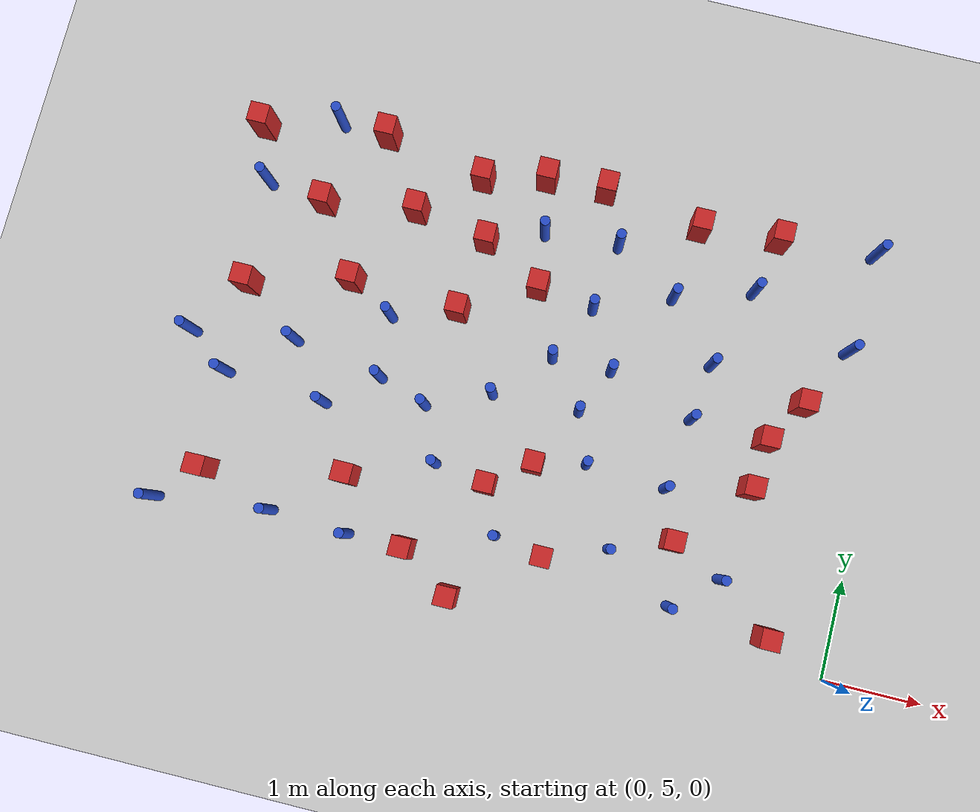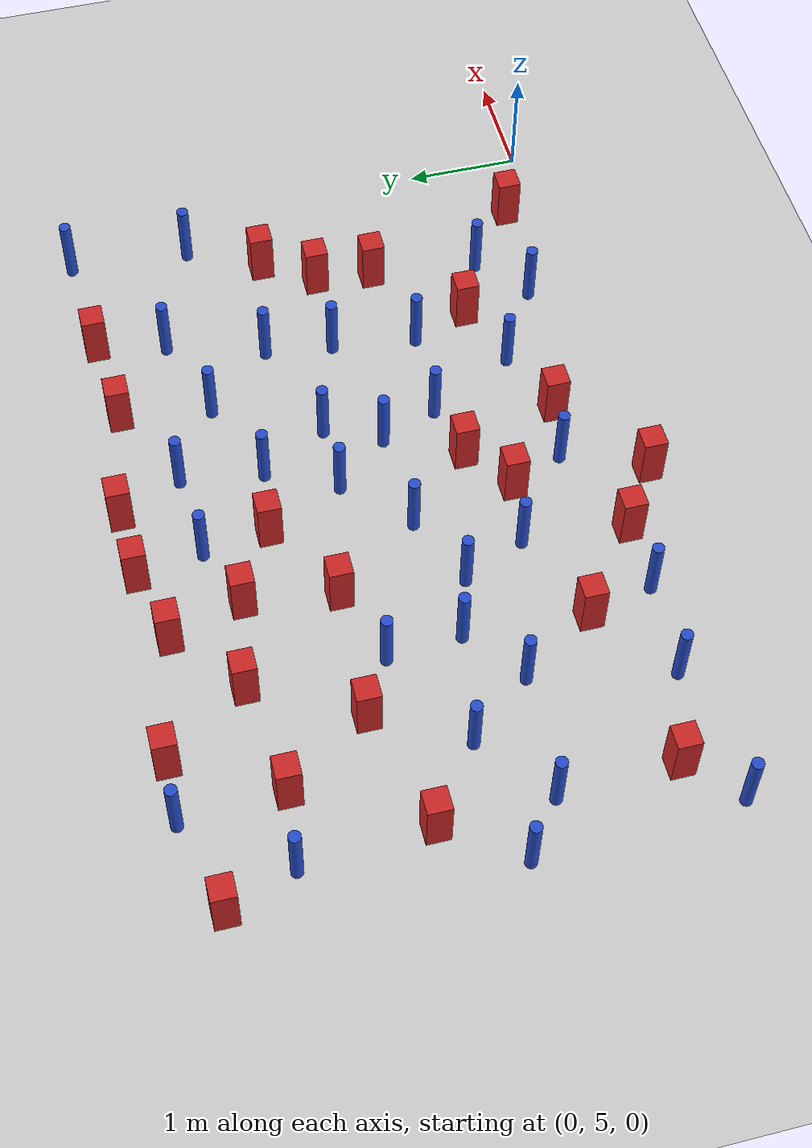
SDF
<sdf version="1.6">
 <world name="default">
  <model name="ground_plane">
   <static>1</static>
   <link name="link">
    <collision name="collision">
     <geometry><plane><normal>0 0 1</normal><size>100 100</size></plane></geometry>
     <surface><friction><ode><mu>100</mu><mu2>50</mu2></ode></friction></surface>
    </collision>
    <visual name="visual">
     <cast_shadows>0</cast_shadows>
     <geometry><plane><normal>0 0 1</normal><size>100 100</size></plane></geometry>
     <material>
      <ambient>1.0 1.0 1.0 1.0</ambient>
      <diffuse>0.8 0.8 0.8 1.0</diffuse>
      <specular>0.01 0.01 0.01 1.000000</specular>
     </material>
    </visual>
   </link>
  </model>
  <model name="square_post_obstacle0">
   <static>true</static>
   <pose>-6.83887996869 9.17429792986 -7.80171244635e-07 7.17449752808e-06 -5.6639232126e-07 2.2715510512e-05</pose>
   <link name="link">
    <pose>0 0 0.25 0 -0 0</pose>
    <inertial>
     <mass>100</mass>
     <inertia>
      <ixx>0.166667</ixx>
      <ixy>0</ixy>
      <ixz>0</ixz>
      <iyy>0.166667</iyy>
      <iyz>0</iyz>
      <izz>0.166667</izz>
     </inertia>
    </inertial>
    <collision name="collision"><geometry><box><size>.2 .2 .5</size></box></geometry></collision>
    <visual name="visual">
     <geometry><box><size>.2 .2 .5</size></box></geometry>
     <material>
      <script><name>Gazebo/Red</name><uri>file://media/materials/scripts/gazebo.material</uri></script>
     </material>
    </visual>
   </link>
  </model>
  <model name="pole_obstacle20">
   <static>true</static>
   <pose>-5.93299753784 7.05124423106 -2.66029137441e-07 -5.69430205655e-07 6.84129966534e-07 -8.68349370984e-08</pose>
   <link name="link">
    <pose>0 0 0.3 0 -0 0</pose>
    <inertial>
     <mass>1</mass>
     <inertia><ixx>0.145833</ixx><ixy>0</ixy><ixz>0</ixz><iyy>0.145833</iyy><iyz>0</iyz><izz>0.125</izz></inertia>
    </inertial>
    <collision name="collision">
     <geometry><cylinder><radius>0.05</radius><length>.6</length></cylinder></geometry>
    </collision>
    <visual name="visual">
     <geometry><cylinder><radius>0.05</radius><length>.6</length></cylinder></geometry>
     <material>
      <script><name>Gazebo/Blue</name><uri>file://media/materials/scripts/gazebo.material</uri></script>
     </material>
    </visual>
   </link>
  </model>
  <model name="pole_obstacle27">
   <static>true</static>
   <pose>-6.97796490425 6.90476265055 -2.66029137441e-07 -5.69430205655e-07 6.84129966534e-07 -8.68349370984e-08</pose>
   <link name="link">
    <pose>0 0 0.3 0 -0 0</pose>
    <inertial>
     <mass>1</mass>
     <inertia><ixx>0.145833</ixx><ixy>0</ixy><ixz>0</ixz><iyy>0.145833</iyy><iyz>0</iyz><izz>0.125</izz></inertia>
    </inertial>
    <collision name="collision">
     <geometry><cylinder><radius>0.05</radius><length>.6</length></cylinder></geometry>
    </collision>
    <visual name="visual">
     <geometry><cylinder><radius>0.05</radius><length>.6</length></cylinder></geometry>
     <material>
      <script><name>Gazebo/Blue</name><uri>file://media/materials/scripts/gazebo.material</uri></script>
     </material>
    </visual>
   </link>
  </model>
  <model name="pole_obstacle29">
   <static>true</static>
   <pose>-1.77329389116 7.79577977968 -2.66029137441e-07 -5.69430205635e-07 6.84129966557e-07 -8.68349370822e-08</pose>
   <link name="link">
    <pose>0 0 0.3 0 -0 0</pose>
    <inertial>
     <mass>1</mass>
     <inertia><ixx>0.145833</ixx><ixy>0</ixy><ixz>0</ixz><iyy>0.145833</iyy><iyz>0</iyz><izz>0.125</izz></inertia>
    </inertial>
    <collision name="collision">
     <geometry><cylinder><radius>0.05</radius><length>.6</length></cylinder></geometry>
    </collision>
    <visual name="visual">
     <geometry><cylinder><radius>0.05</radius><length>.6</length></cylinder></geometry>
     <material>
      <script><name>Gazebo/Blue</name><uri>file://media/materials/scripts/gazebo.material</uri></script>
     </material>
    </visual>
   </link>
  </model>
  <model name="square_post_obstacle25">
   <static>true</static>
   <pose>-1.12262337533 6.67532408593 -7.80171244635e-07 7.17449752808e-06 -5.6639232126e-07 2.2715510512e-05</pose>
   <link name="link">
    <pose>0 0 0.25 0 -0 0</pose>
    <inertial>
     <mass>100</mass>
     <inertia>
      <ixx>0.166667</ixx>
      <ixy>0</ixy>
      <ixz>0</ixz>
      <iyy>0.166667</iyy>
      <iyz>0</iyz>
      <izz>0.166667</izz>
     </inertia>
    </inertial>
    <collision name="collision"><geometry><box><size>.2 .2 .5</size></box></geometry></collision>
    <visual name="visual">
     <geometry><box><size>.2 .2 .5</size></box></geometry>
     <material>
      <script><name>Gazebo/Red</name><uri>file://media/materials/scripts/gazebo.material</uri></script>
     </material>
    </visual>
   </link>
  </model>
  <model name="square_post_obstacle26">
   <static>true</static>
   <pose>-2.19983789759 9.16449248142 -7.80171244635e-07 7.17449752808e-06 -5.6639232126e-07 2.2715510512e-05</pose>
   <link name="link">
    <pose>0 0 0.25 0 -0 0</pose>
    <inertial>
     <mass>100</mass>
     <inertia>
      <ixx>0.166667</ixx>
      <ixy>0</ixy>
      <ixz>0</ixz>
      <iyy>0.166667</iyy>
      <iyz>0</iyz>
      <izz>0.166667</izz>
     </inertia>
    </inertial>
    <collision name="collision"><geometry><box><size>.2 .2 .5</size></box></geometry></collision>
    <visual name="visual">
     <geometry><box><size>.2 .2 .5</size></box></geometry>
     <material>
      <script><name>Gazebo/Red</name><uri>file://media/materials/scripts/gazebo.material</uri></script>
     </material>
    </visual>
   </link>
  </model>
  <model name="pole_obstacle32">
   <static>true</static>
   <pose>-3.85718485133 6.98744299189 -2.66029137497e-07 -5.69430205671e-07 6.84129966507e-07 -8.68349371095e-08</pose>
   <link name="link">
    <pose>0 0 0.3 0 -0 0</pose>
    <inertial>
     <mass>1</mass>
     <inertia><ixx>0.145833</ixx><ixy>0</ixy><ixz>0</ixz><iyy>0.145833</iyy><iyz>0</iyz><izz>0.125</izz></inertia>
    </inertial>
    <collision name="collision">
     <geometry><cylinder><radius>0.05</radius><length>.6</length></cylinder></geometry>
    </collision>
    <visual name="visual">
     <geometry><cylinder><radius>0.05</radius><length>.6</length></cylinder></geometry>
     <material>
      <script><name>Gazebo/Blue</name><uri>file://media/materials/scripts/gazebo.material</uri></script>
     </material>
    </visual>
   </link>
  </model>
  <model name="pole_obstacle35">
   <static>true</static>
   <pose>-3.73562210031 8.73606289772 -2.66029137497e-07 -5.69430205676e-07 6.84129966501e-07 -8.6834937112e-08</pose>
   <link name="link">
    <pose>0 0 0.3 0 -0 0</pose>
    <inertial>
     <mass>1</mass>
     <inertia><ixx>0.145833</ixx><ixy>0</ixy><ixz>0</ixz><iyy>0.145833</iyy><iyz>0</iyz><izz>0.125</izz></inertia>
    </inertial>
    <collision name="collision">
     <geometry><cylinder><radius>0.05</radius><length>.6</length></cylinder></geometry>
    </collision>
    <visual name="visual">
     <geometry><cylinder><radius>0.05</radius><length>.6</length></cylinder></geometry>
     <material>
      <script><name>Gazebo/Blue</name><uri>file://media/materials/scripts/gazebo.material</uri></script>
     </material>
    </visual>
   </link>
  </model>
  <model name="pole_obstacle40">
   <static>true</static>
   <pose>-1.22563379381 5.72191360448 -2.66029137441e-07 -5.69430205635e-07 6.84129966557e-07 -8.68349370822e-08</pose>
   <link name="link">
    <pose>0 0 0.3 0 -0 0</pose>
    <inertial>
     <mass>1</mass>
     <inertia><ixx>0.145833</ixx><ixy>0</ixy><ixz>0</ixz><iyy>0.145833</iyy><iyz>0</iyz><izz>0.125</izz></inertia>
    </inertial>
    <collision name="collision">
     <geometry><cylinder><radius>0.05</radius><length>.6</length></cylinder></geometry>
    </collision>
    <visual name="visual">
     <geometry><cylinder><radius>0.05</radius><length>.6</length></cylinder></geometry>
     <material>
      <script><name>Gazebo/Blue</name><uri>file://media/materials/scripts/gazebo.material</uri></script>
     </material>
    </visual>
   </link>
  </model>
  <model name="square_post_obstacle32">
   <static>true</static>
   <pose>-5.53222149862 7.79740449973 -7.80171244635e-07 7.17449752808e-06 -5.6639232126e-07 2.2715510512e-05</pose>
   <link name="link">
    <pose>0 0 0.25 0 -0 0</pose>
    <inertial>
     <mass>100</mass>
     <inertia>
      <ixx>0.166667</ixx>
      <ixy>0</ixy>
      <ixz>0</ixz>
      <iyy>0.166667</iyy>
      <iyz>0</iyz>
      <izz>0.166667</izz>
     </inertia>
    </inertial>
    <collision name="collision"><geometry><box><size>.2 .2 .5</size></box></geometry></collision>
    <visual name="visual">
     <geometry><box><size>.2 .2 .5</size></box></geometry>
     <material>
      <script><name>Gazebo/Red</name><uri>file://media/materials/scripts/gazebo.material</uri></script>
     </material>
    </visual>
   </link>
  </model>
  <model name="pole_obstacle44">
   <static>true</static>
   <pose>-1.85232527672 7.20815663883 -2.66029137441e-07 -5.69430205635e-07 6.84129966557e-07 -8.68349370822e-08</pose>
   <link name="link">
    <pose>0 0 0.3 0 -0 0</pose>
    <inertial>
     <mass>1</mass>
     <inertia><ixx>0.145833</ixx><ixy>0</ixy><ixz>0</ixz><iyy>0.145833</iyy><iyz>0</iyz><izz>0.125</izz></inertia>
    </inertial>
    <collision name="collision">
     <geometry><cylinder><radius>0.05</radius><length>.6</length></cylinder></geometry>
    </collision>
    <visual name="visual">
     <geometry><cylinder><radius>0.05</radius><length>.6</length></cylinder></geometry>
     <material>
      <script><name>Gazebo/Blue</name><uri>file://media/materials/scripts/gazebo.material</uri></script>
     </material>
    </visual>
   </link>
  </model>
  <model name="square_post_obstacle38">
   <static>true</static>
   <pose>-0.790095084288 7.62707374398 -7.80171244635e-07 7.17449752808e-06 -5.6639232126e-07 2.2715510512e-05</pose>
   <link name="link">
    <pose>0 0 0.25 0 -0 0</pose>
    <inertial>
     <mass>100</mass>
     <inertia>
      <ixx>0.166667</ixx>
      <ixy>0</ixy>
      <ixz>0</ixz>
      <iyy>0.166667</iyy>
      <iyz>0</iyz>
      <izz>0.166667</izz>
     </inertia>
    </inertial>
    <collision name="collision"><geometry><box><size>.2 .2 .5</size></box></geometry></collision>
    <visual name="visual">
     <geometry><box><size>.2 .2 .5</size></box></geometry>
     <material>
      <script><name>Gazebo/Red</name><uri>file://media/materials/scripts/gazebo.material</uri></script>
     </material>
    </visual>
   </link>
  </model>
  <model name="pole_obstacle52">
   <static>true</static>
   <pose>-4.49309569144 6.71539703016 -2.66029137441e-07 -5.69430205655e-07 6.84129966534e-07 -8.68349370984e-08</pose>
   <link name="link">
    <pose>0 0 0.3 0 -0 0</pose>
    <inertial>
     <mass>1</mass>
     <inertia><ixx>0.145833</ixx><ixy>0</ixy><ixz>0</ixz><iyy>0.145833</iyy><iyz>0</iyz><izz>0.125</izz></inertia>
    </inertial>
    <collision name="collision">
     <geometry><cylinder><radius>0.05</radius><length>.6</length></cylinder></geometry>
    </collision>
    <visual name="visual">
     <geometry><cylinder><radius>0.05</radius><length>.6</length></cylinder></geometry>
     <material>
      <script><name>Gazebo/Blue</name><uri>file://media/materials/scripts/gazebo.material</uri></script>
     </material>
    </visual>
   </link>
  </model>
  <model name="pole_obstacle55">
   <static>true</static>
   <pose>-4.92157734486 5.28112593331 -2.66029137441e-07 -5.69430205655e-07 6.84129966534e-07 -8.68349370984e-08</pose>
   <link name="link">
    <pose>0 0 0.3 0 -0 0</pose>
    <inertial>
     <mass>1</mass>
     <inertia><ixx>0.145833</ixx><ixy>0</ixy><ixz>0</ixz><iyy>0.145833</iyy><iyz>0</iyz><izz>0.125</izz></inertia>
    </inertial>
    <collision name="collision">
     <geometry><cylinder><radius>0.05</radius><length>.6</length></cylinder></geometry>
    </collision>
    <visual name="visual">
     <geometry><cylinder><radius>0.05</radius><length>.6</length></cylinder></geometry>
     <material>
      <script><name>Gazebo/Blue</name><uri>file://media/materials/scripts/gazebo.material</uri></script>
     </material>
    </visual>
   </link>
  </model>
  <model name="pole_obstacle59">
   <static>true</static>
   <pose>-2.30244423434 8.38269228352 -2.66029137497e-07 -5.69430205676e-07 6.84129966501e-07 -8.6834937112e-08</pose>
   <link name="link">
    <pose>0 0 0.3 0 -0 0</pose>
    <inertial>
     <mass>1</mass>
     <inertia><ixx>0.145833</ixx><ixy>0</ixy><ixz>0</ixz><iyy>0.145833</iyy><iyz>0</iyz><izz>0.125</izz></inertia>
    </inertial>
    <collision name="collision">
     <geometry><cylinder><radius>0.05</radius><length>.6</length></cylinder></geometry>
    </collision>
    <visual name="visual">
     <geometry><cylinder><radius>0.05</radius><length>.6</length></cylinder></geometry>
     <material>
      <script><name>Gazebo/Blue</name><uri>file://media/materials/scripts/gazebo.material</uri></script>
     </material>
    </visual>
   </link>
  </model>
  <model name="pole_obstacle64">
   <static>true</static>
   <pose>-6.06229035048 9.38630342026 -2.66029137441e-07 -5.69430205631e-07 6.84129966561e-07 -8.68349370782e-08</pose>
   <link name="link">
    <pose>0 0 0.3 0 -0 0</pose>
    <inertial>
     <mass>1</mass>
     <inertia><ixx>0.145833</ixx><ixy>0</ixy><ixz>0</ixz><iyy>0.145833</iyy><iyz>0</iyz><izz>0.125</izz></inertia>
    </inertial>
    <collision name="collision">
     <geometry><cylinder><radius>0.05</radius><length>.6</length></cylinder></geometry>
    </collision>
    <visual name="visual">
     <geometry><cylinder><radius>0.05</radius><length>.6</length></cylinder></geometry>
     <material>
      <script><name>Gazebo/Blue</name><uri>file://media/materials/scripts/gazebo.material</uri></script>
     </material>
    </visual>
   </link>
  </model>
  <model name="pole_obstacle65">
   <static>true</static>
   <pose>-3.48631925765 5.61033831803 -2.66029137497e-07 -5.69430205671e-07 6.84129966507e-07 -8.68349371095e-08</pose>
   <link name="link">
    <pose>0 0 0.3 0 -0 0</pose>
    <inertial>
     <mass>1</mass>
     <inertia><ixx>0.145833</ixx><ixy>0</ixy><ixz>0</ixz><iyy>0.145833</iyy><iyz>0</iyz><izz>0.125</izz></inertia>
    </inertial>
    <collision name="collision">
     <geometry><cylinder><radius>0.05</radius><length>.6</length></cylinder></geometry>
    </collision>
    <visual name="visual">
     <geometry><cylinder><radius>0.05</radius><length>.6</length></cylinder></geometry>
     <material>
      <script><name>Gazebo/Blue</name><uri>file://media/materials/scripts/gazebo.material</uri></script>
     </material>
    </visual>
   </link>
  </model>
  <model name="square_post_obstacle50">
   <static>true</static>
   <pose>-0.670259163197 5.27795611319 -7.80171244635e-07 7.17449752808e-06 -5.6639232126e-07 2.2715510512e-05</pose>
   <link name="link">
    <pose>0 0 0.25 0 -0 0</pose>
    <inertial>
     <mass>100</mass>
     <inertia>
      <ixx>0.166667</ixx>
      <ixy>0</ixy>
      <ixz>0</ixz>
      <iyy>0.166667</iyy>
      <iyz>0</iyz>
      <izz>0.166667</izz>
     </inertia>
    </inertial>
    <collision name="collision"><geometry><box><size>.2 .2 .5</size></box></geometry></collision>
    <visual name="visual">
     <geometry><box><size>.2 .2 .5</size></box></geometry>
     <material>
      <script><name>Gazebo/Red</name><uri>file://media/materials/scripts/gazebo.material</uri></script>
     </material>
    </visual>
   </link>
  </model>
  <model name="pole_obstacle69">
   <static>true</static>
   <pose>-1.51433584829 8.63703716128 -2.66029137441e-07 -5.69430205648e-07 6.84129966543e-07 -8.68349370925e-08</pose>
   <link name="link">
    <pose>0 0 0.3 0 -0 0</pose>
    <inertial>
     <mass>1</mass>
     <inertia><ixx>0.145833</ixx><ixy>0</ixy><ixz>0</ixz><iyy>0.145833</iyy><iyz>0</iyz><izz>0.125</izz></inertia>
    </inertial>
    <collision name="collision">
     <geometry><cylinder><radius>0.05</radius><length>.6</length></cylinder></geometry>
    </collision>
    <visual name="visual">
     <geometry><cylinder><radius>0.05</radius><length>.6</length></cylinder></geometry>
     <material>
      <script><name>Gazebo/Blue</name><uri>file://media/materials/scripts/gazebo.material</uri></script>
     </material>
    </visual>
   </link>
  </model>
  <model name="square_post_obstacle62">
   <static>true</static>
   <pose>-4.48772408723 9.15070110294 -7.80171244635e-07 7.17449752808e-06 -5.6639232126e-07 2.2715510512e-05</pose>
   <link name="link">
    <pose>0 0 0.25 0 -0 0</pose>
    <inertial>
     <mass>100</mass>
     <inertia>
      <ixx>0.166667</ixx>
      <ixy>0</ixy>
      <ixz>0</ixz>
      <iyy>0.166667</iyy>
      <iyz>0</iyz>
      <izz>0.166667</izz>
     </inertia>
    </inertial>
    <collision name="collision"><geometry><box><size>.2 .2 .5</size></box></geometry></collision>
    <visual name="visual">
     <geometry><box><size>.2 .2 .5</size></box></geometry>
     <material>
      <script><name>Gazebo/Red</name><uri>file://media/materials/scripts/gazebo.material</uri></script>
     </material>
    </visual>
   </link>
  </model>
  <model name="pole_obstacle81">
   <static>true</static>
   <pose>-2.74382415478 7.49635694177 -2.66029137441e-07 -5.69430205635e-07 6.84129966557e-07 -8.68349370832e-08</pose>
   <link name="link">
    <pose>0 0 0.3 0 -0 0</pose>
    <inertial>
     <mass>1</mass>
     <inertia><ixx>0.145833</ixx><ixy>0</ixy><ixz>0</ixz><iyy>0.145833</iyy><iyz>0</iyz><izz>0.125</izz></inertia>
    </inertial>
    <collision name="collision">
     <geometry><cylinder><radius>0.05</radius><length>.6</length></cylinder></geometry>
    </collision>
    <visual name="visual">
     <geometry><cylinder><radius>0.05</radius><length>.6</length></cylinder></geometry>
     <material>
      <script><name>Gazebo/Blue</name><uri>file://media/materials/scripts/gazebo.material</uri></script>
     </material>
    </visual>
   </link>
  </model>
  <model name="pole_obstacle82">
   <static>true</static>
   <pose>-0.45741310276 8.25445707647 -2.66029137441e-07 -5.69430205644e-07 6.84129966547e-07 -8.68349370903e-08</pose>
   <link name="link">
    <pose>0 0 0.3 0 -0 0</pose>
    <inertial>
     <mass>1</mass>
     <inertia><ixx>0.145833</ixx><ixy>0</ixy><ixz>0</ixz><iyy>0.145833</iyy><iyz>0</iyz><izz>0.125</izz></inertia>
    </inertial>
    <collision name="collision">
     <geometry><cylinder><radius>0.05</radius><length>.6</length></cylinder></geometry>
    </collision>
    <visual name="visual">
     <geometry><cylinder><radius>0.05</radius><length>.6</length></cylinder></geometry>
     <material>
      <script><name>Gazebo/Blue</name><uri>file://media/materials/scripts/gazebo.material</uri></script>
     </material>
    </visual>
   </link>
  </model>
  <model name="square_post_obstacle72">
   <static>true</static>
   <pose>-4.34006714878 5.2861003149 -7.80171244635e-07 7.17449752808e-06 -5.6639232126e-07 2.2715510512e-05</pose>
   <link name="link">
    <pose>0 0 0.25 0 -0 0</pose>
    <inertial>
     <mass>100</mass>
     <inertia>
      <ixx>0.166667</ixx>
      <ixy>0</ixy>
      <ixz>0</ixz>
      <iyy>0.166667</iyy>
      <iyz>0</iyz>
      <izz>0.166667</izz>
     </inertia>
    </inertial>
    <collision name="collision"><geometry><box><size>.2 .2 .5</size></box></geometry></collision>
    <visual name="visual">
     <geometry><box><size>.2 .2 .5</size></box></geometry>
     <material>
      <script><name>Gazebo/Red</name><uri>file://media/materials/scripts/gazebo.material</uri></script>
     </material>
    </visual>
   </link>
  </model>
  <model name="pole_obstacle86">
   <static>true</static>
   <pose>-3.07265329151 8.08156290127 -2.66029137441e-07 -5.69430205637e-07 6.84129966555e-07 -8.68349370847e-08</pose>
   <link name="link">
    <pose>0 0 0.3 0 -0 0</pose>
    <inertial>
     <mass>1</mass>
     <inertia><ixx>0.145833</ixx><ixy>0</ixy><ixz>0</ixz><iyy>0.145833</iyy><iyz>0</iyz><izz>0.125</izz></inertia>
    </inertial>
    <collision name="collision">
     <geometry><cylinder><radius>0.05</radius><length>.6</length></cylinder></geometry>
    </collision>
    <visual name="visual">
     <geometry><cylinder><radius>0.05</radius><length>.6</length></cylinder></geometry>
     <material>
      <script><name>Gazebo/Blue</name><uri>file://media/materials/scripts/gazebo.material</uri></script>
     </material>
    </visual>
   </link>
  </model>
  <model name="pole_obstacle90">
   <static>true</static>
   <pose>-4.24516241833 6.16883136555 -2.66029137441e-07 -5.69430205655e-07 6.84129966534e-07 -8.68349370984e-08</pose>
   <link name="link">
    <pose>0 0 0.3 0 -0 0</pose>
    <inertial>
     <mass>1</mass>
     <inertia><ixx>0.145833</ixx><ixy>0</ixy><ixz>0</ixz><iyy>0.145833</iyy><iyz>0</iyz><izz>0.125</izz></inertia>
    </inertial>
    <collision name="collision">
     <geometry><cylinder><radius>0.05</radius><length>.6</length></cylinder></geometry>
    </collision>
    <visual name="visual">
     <geometry><cylinder><radius>0.05</radius><length>.6</length></cylinder></geometry>
     <material>
      <script><name>Gazebo/Blue</name><uri>file://media/materials/scripts/gazebo.material</uri></script>
     </material>
    </visual>
   </link>
  </model>
  <model name="pole_obstacle95">
   <static>true</static>
   <pose>-6.53063946784 6.57460335781 -2.66029137441e-07 -5.69430205655e-07 6.84129966534e-07 -8.68349370984e-08</pose>
   <link name="link">
    <pose>0 0 0.3 0 -0 0</pose>
    <inertial>
     <mass>1</mass>
     <inertia><ixx>0.145833</ixx><ixy>0</ixy><ixz>0</ixz><iyy>0.145833</iyy><iyz>0</iyz><izz>0.125</izz></inertia>
    </inertial>
    <collision name="collision">
     <geometry><cylinder><radius>0.05</radius><length>.6</length></cylinder></geometry>
    </collision>
    <visual name="visual">
     <geometry><cylinder><radius>0.05</radius><length>.6</length></cylinder></geometry>
     <material>
      <script><name>Gazebo/Blue</name><uri>file://media/materials/scripts/gazebo.material</uri></script>
     </material>
    </visual>
   </link>
  </model>
  <model name="square_post_obstacle98">
   <static>true</static>
   <pose>-3.70152067987 6.0896619253 -7.80171244635e-07 7.17449752808e-06 -5.6639232126e-07 2.2715510512e-05</pose>
   <link name="link">
    <pose>0 0 0.25 0 -0 0</pose>
    <inertial>
     <mass>100</mass>
     <inertia>
      <ixx>0.166667</ixx>
      <ixy>0</ixy>
      <ixz>0</ixz>
      <iyy>0.166667</iyy>
      <iyz>0</iyz>
      <izz>0.166667</izz>
     </inertia>
    </inertial>
    <collision name="collision"><geometry><box><size>.2 .2 .5</size></box></geometry></collision>
    <visual name="visual">
     <geometry><box><size>.2 .2 .5</size></box></geometry>
     <material>
      <script><name>Gazebo/Red</name><uri>file://media/materials/scripts/gazebo.material</uri></script>
     </material>
    </visual>
   </link>
  </model>
  <model name="pole_obstacle104">
   <static>true</static>
   <pose>-5.05443665744 7.52034737585 -2.66029137441e-07 -5.69430205655e-07 6.84129966534e-07 -8.68349370984e-08</pose>
   <link name="link">
    <pose>0 0 0.3 0 -0 0</pose>
    <inertial>
     <mass>1</mass>
     <inertia><ixx>0.145833</ixx><ixy>0</ixy><ixz>0</ixz><iyy>0.145833</iyy><iyz>0</iyz><izz>0.125</izz></inertia>
    </inertial>
    <collision name="collision">
     <geometry><cylinder><radius>0.05</radius><length>.6</length></cylinder></geometry>
    </collision>
    <visual name="visual">
     <geometry><cylinder><radius>0.05</radius><length>.6</length></cylinder></geometry>
     <material>
      <script><name>Gazebo/Blue</name><uri>file://media/materials/scripts/gazebo.material</uri></script>
     </material>
    </visual>
   </link>
  </model>
  <model name="pole_obstacle109">
   <static>true</static>
   <pose>-2.96432004817 7.02032658678 -2.66029137441e-07 -5.69430205635e-07 6.84129966557e-07 -8.68349370832e-08</pose>
   <link name="link">
    <pose>0 0 0.3 0 -0 0</pose>
    <inertial>
     <mass>1</mass>
     <inertia><ixx>0.145833</ixx><ixy>0</ixy><ixz>0</ixz><iyy>0.145833</iyy><iyz>0</iyz><izz>0.125</izz></inertia>
    </inertial>
    <collision name="collision">
     <geometry><cylinder><radius>0.05</radius><length>.6</length></cylinder></geometry>
    </collision>
    <visual name="visual">
     <geometry><cylinder><radius>0.05</radius><length>.6</length></cylinder></geometry>
     <material>
      <script><name>Gazebo/Blue</name><uri>file://media/materials/scripts/gazebo.material</uri></script>
     </material>
    </visual>
   </link>
  </model>
  <model name="square_post_obstacle105">
   <static>true</static>
   <pose>-3.66665297099 8.16835207123 -7.80171244635e-07 7.17449752808e-06 -5.6639232126e-07 2.2715510512e-05</pose>
   <link name="link">
    <pose>0 0 0.25 0 -0 0</pose>
    <inertial>
     <mass>100</mass>
     <inertia>
      <ixx>0.166667</ixx>
      <ixy>0</ixy>
      <ixz>0</ixz>
      <iyy>0.166667</iyy>
      <iyz>0</iyz>
      <izz>0.166667</izz>
     </inertia>
    </inertial>
    <collision name="collision"><geometry><box><size>.2 .2 .5</size></box></geometry></collision>
    <visual name="visual">
     <geometry><box><size>.2 .2 .5</size></box></geometry>
     <material>
      <script><name>Gazebo/Red</name><uri>file://media/materials/scripts/gazebo.material</uri></script>
     </material>
    </visual>
   </link>
  </model>
  <model name="pole_obstacle116">
   <static>true</static>
   <pose>-1.66390226145 5.34236646098 -2.66029137441e-07 -5.69430205635e-07 6.84129966557e-07 -8.68349370822e-08</pose>
   <link name="link">
    <pose>0 0 0.3 0 -0 0</pose>
    <inertial>
     <mass>1</mass>
     <inertia><ixx>0.145833</ixx><ixy>0</ixy><ixz>0</ixz><iyy>0.145833</iyy><iyz>0</iyz><izz>0.125</izz></inertia>
    </inertial>
    <collision name="collision">
     <geometry><cylinder><radius>0.05</radius><length>.6</length></cylinder></geometry>
    </collision>
    <visual name="visual">
     <geometry><cylinder><radius>0.05</radius><length>.6</length></cylinder></geometry>
     <material>
      <script><name>Gazebo/Blue</name><uri>file://media/materials/scripts/gazebo.material</uri></script>
     </material>
    </visual>
   </link>
  </model>
  <model name="square_post_obstacle116">
   <static>true</static>
   <pose>-3.2223436823 9.32889181291 -7.80171244635e-07 7.17449752808e-06 -5.6639232126e-07 2.2715510512e-05</pose>
   <link name="link">
    <pose>0 0 0.25 0 -0 0</pose>
    <inertial>
     <mass>100</mass>
     <inertia>
      <ixx>0.166667</ixx>
      <ixy>0</ixy>
      <ixz>0</ixz>
      <iyy>0.166667</iyy>
      <iyz>0</iyz>
      <izz>0.166667</izz>
     </inertia>
    </inertial>
    <collision name="collision"><geometry><box><size>.2 .2 .5</size></box></geometry></collision>
    <visual name="visual">
     <geometry><box><size>.2 .2 .5</size></box></geometry>
     <material>
      <script><name>Gazebo/Red</name><uri>file://media/materials/scripts/gazebo.material</uri></script>
     </material>
    </visual>
   </link>
  </model>
  <model name="pole_obstacle120">
   <static>true</static>
   <pose>-5.48655007974 6.49881449678 -2.66029137441e-07 -5.69430205655e-07 6.84129966534e-07 -8.68349370984e-08</pose>
   <link name="link">
    <pose>0 0 0.3 0 -0 0</pose>
    <inertial>
     <mass>1</mass>
     <inertia><ixx>0.145833</ixx><ixy>0</ixy><ixz>0</ixz><iyy>0.145833</iyy><iyz>0</iyz><izz>0.125</izz></inertia>
    </inertial>
    <collision name="collision">
     <geometry><cylinder><radius>0.05</radius><length>.6</length></cylinder></geometry>
    </collision>
    <visual name="visual">
     <geometry><cylinder><radius>0.05</radius><length>.6</length></cylinder></geometry>
     <material>
      <script><name>Gazebo/Blue</name><uri>file://media/materials/scripts/gazebo.material</uri></script>
     </material>
    </visual>
   </link>
  </model>
  <model name="square_post_obstacle121">
   <static>true</static>
   <pose>-6.55785365578 7.52226805257 -7.80171244635e-07 7.17449752808e-06 -5.6639232126e-07 2.2715510512e-05</pose>
   <link name="link">
    <pose>0 0 0.25 0 -0 0</pose>
    <inertial>
     <mass>100</mass>
     <inertia>
      <ixx>0.166667</ixx>
      <ixy>0</ixy>
      <ixz>0</ixz>
      <iyy>0.166667</iyy>
      <iyz>0</iyz>
      <izz>0.166667</izz>
     </inertia>
    </inertial>
    <collision name="collision"><geometry><box><size>.2 .2 .5</size></box></geometry></collision>
    <visual name="visual">
     <geometry><box><size>.2 .2 .5</size></box></geometry>
     <material>
      <script><name>Gazebo/Red</name><uri>file://media/materials/scripts/gazebo.material</uri></script>
     </material>
    </visual>
   </link>
  </model>
  <model name="pole_obstacle125">
   <static>true</static>
   <pose>-4.99812157996 6.8838896407 -2.66029137441e-07 -5.69430205655e-07 6.84129966534e-07 -8.68349370984e-08</pose>
   <link name="link">
    <pose>0 0 0.3 0 -0 0</pose>
    <inertial>
     <mass>1</mass>
     <inertia><ixx>0.145833</ixx><ixy>0</ixy><ixz>0</ixz><iyy>0.145833</iyy><iyz>0</iyz><izz>0.125</izz></inertia>
    </inertial>
    <collision name="collision">
     <geometry><cylinder><radius>0.05</radius><length>.6</length></cylinder></geometry>
    </collision>
    <visual name="visual">
     <geometry><cylinder><radius>0.05</radius><length>.6</length></cylinder></geometry>
     <material>
      <script><name>Gazebo/Blue</name><uri>file://media/materials/scripts/gazebo.material</uri></script>
     </material>
    </visual>
   </link>
  </model>
  <model name="pole_obstacle126">
   <static>true</static>
   <pose>-2.7672827721 6.51889229718 -2.66029137441e-07 -5.69430205635e-07 6.84129966557e-07 -8.68349370832e-08</pose>
   <link name="link">
    <pose>0 0 0.3 0 -0 0</pose>
    <inertial>
     <mass>1</mass>
     <inertia><ixx>0.145833</ixx><ixy>0</ixy><ixz>0</ixz><iyy>0.145833</iyy><iyz>0</iyz><izz>0.125</izz></inertia>
    </inertial>
    <collision name="collision">
     <geometry><cylinder><radius>0.05</radius><length>.6</length></cylinder></geometry>
    </collision>
    <visual name="visual">
     <geometry><cylinder><radius>0.05</radius><length>.6</length></cylinder></geometry>
     <material>
      <script><name>Gazebo/Blue</name><uri>file://media/materials/scripts/gazebo.material</uri></script>
     </material>
    </visual>
   </link>
  </model>
  <model name="pole_obstacle135">
   <static>true</static>
   <pose>-0.388200367085 9.30654941947 -2.66029137441e-07 -5.6943020566e-07 6.84129966529e-07 -8.68349371036e-08</pose>
   <link name="link">
    <pose>0 0 0.3 0 -0 0</pose>
    <inertial>
     <mass>1</mass>
     <inertia><ixx>0.145833</ixx><ixy>0</ixy><ixz>0</ixz><iyy>0.145833</iyy><iyz>0</iyz><izz>0.125</izz></inertia>
    </inertial>
    <collision name="collision">
     <geometry><cylinder><radius>0.05</radius><length>.6</length></cylinder></geometry>
    </collision>
    <visual name="visual">
     <geometry><cylinder><radius>0.05</radius><length>.6</length></cylinder></geometry>
     <material>
      <script><name>Gazebo/Blue</name><uri>file://media/materials/scripts/gazebo.material</uri></script>
     </material>
    </visual>
   </link>
  </model>
  <model name="square_post_obstacle138">
   <static>true</static>
   <pose>-2.98898741228 5.52306224848 -7.80171244635e-07 7.17449752808e-06 -5.6639232126e-07 2.2715510512e-05</pose>
   <link name="link">
    <pose>0 0 0.25 0 -0 0</pose>
    <inertial>
     <mass>100</mass>
     <inertia>
      <ixx>0.166667</ixx>
      <ixy>0</ixy>
      <ixz>0</ixz>
      <iyy>0.166667</iyy>
      <iyz>0</iyz>
      <izz>0.166667</izz>
     </inertia>
    </inertial>
    <collision name="collision"><geometry><box><size>.2 .2 .5</size></box></geometry></collision>
    <visual name="visual">
     <geometry><box><size>.2 .2 .5</size></box></geometry>
     <material>
      <script><name>Gazebo/Red</name><uri>file://media/materials/scripts/gazebo.material</uri></script>
     </material>
    </visual>
   </link>
  </model>
  <model name="pole_obstacle147">
   <static>true</static>
   <pose>-1.94871776575 6.47083338676 -2.66029137441e-07 -5.69430205635e-07 6.84129966557e-07 -8.68349370822e-08</pose>
   <link name="link">
    <pose>0 0 0.3 0 -0 0</pose>
    <inertial>
     <mass>1</mass>
     <inertia><ixx>0.145833</ixx><ixy>0</ixy><ixz>0</ixz><iyy>0.145833</iyy><iyz>0</iyz><izz>0.125</izz></inertia>
    </inertial>
    <collision name="collision">
     <geometry><cylinder><radius>0.05</radius><length>.6</length></cylinder></geometry>
    </collision>
    <visual name="visual">
     <geometry><cylinder><radius>0.05</radius><length>.6</length></cylinder></geometry>
     <material>
      <script><name>Gazebo/Blue</name><uri>file://media/materials/scripts/gazebo.material</uri></script>
     </material>
    </visual>
   </link>
  </model>
  <model name="square_post_obstacle161">
   <static>true</static>
   <pose>-5.0704786321 8.66201903866 -7.80171244635e-07 7.17449752808e-06 -5.6639232126e-07 2.2715510512e-05</pose>
   <link name="link">
    <pose>0 0 0.25 0 -0 0</pose>
    <inertial>
     <mass>100</mass>
     <inertia>
      <ixx>0.166667</ixx>
      <ixy>0</ixy>
      <ixz>0</ixz>
      <iyy>0.166667</iyy>
      <iyz>0</iyz>
      <izz>0.166667</izz>
     </inertia>
    </inertial>
    <collision name="collision"><geometry><box><size>.2 .2 .5</size></box></geometry></collision>
    <visual name="visual">
     <geometry><box><size>.2 .2 .5</size></box></geometry>
     <material>
      <script><name>Gazebo/Red</name><uri>file://media/materials/scripts/gazebo.material</uri></script>
     </material>
    </visual>
   </link>
  </model>
  <model name="square_post_obstacle164">
   <static>true</static>
   <pose>-1.38388216356 9.23743578083 -7.80171244635e-07 7.17449752808e-06 -5.6639232126e-07 2.2715510512e-05</pose>
   <link name="link">
    <pose>0 0 0.25 0 -0 0</pose>
    <inertial>
     <mass>100</mass>
     <inertia>
      <ixx>0.166667</ixx>
      <ixy>0</ixy>
      <ixz>0</ixz>
      <iyy>0.166667</iyy>
      <iyz>0</iyz>
      <izz>0.166667</izz>
     </inertia>
    </inertial>
    <collision name="collision"><geometry><box><size>.2 .2 .5</size></box></geometry></collision>
    <visual name="visual">
     <geometry><box><size>.2 .2 .5</size></box></geometry>
     <material>
      <script><name>Gazebo/Red</name><uri>file://media/materials/scripts/gazebo.material</uri></script>
     </material>
    </visual>
   </link>
  </model>
  <model name="square_post_obstacle165">
   <static>true</static>
   <pose>-3.84571004499 9.30753297131 -7.80171244635e-07 7.17449752808e-06 -5.6639232126e-07 2.2715510512e-05</pose>
   <link name="link">
    <pose>0 0 0.25 0 -0 0</pose>
    <inertial>
     <mass>100</mass>
     <inertia>
      <ixx>0.166667</ixx>
      <ixy>0</ixy>
      <ixz>0</ixz>
      <iyy>0.166667</iyy>
      <iyz>0</iyz>
      <izz>0.166667</izz>
     </inertia>
    </inertial>
    <collision name="collision"><geometry><box><size>.2 .2 .5</size></box></geometry></collision>
    <visual name="visual">
     <geometry><box><size>.2 .2 .5</size></box></geometry>
     <material>
      <script><name>Gazebo/Red</name><uri>file://media/materials/scripts/gazebo.material</uri></script>
     </material>
    </visual>
   </link>
  </model>
  <model name="square_post_obstacle171">
   <static>true</static>
   <pose>-6.49024265824 5.58575949509 -7.80171244635e-07 7.17449752808e-06 -5.6639232126e-07 2.2715510512e-05</pose>
   <link name="link">
    <pose>0 0 0.25 0 -0 0</pose>
    <inertial>
     <mass>100</mass>
     <inertia>
      <ixx>0.166667</ixx>
      <ixy>0</ixy>
      <ixz>0</ixz>
      <iyy>0.166667</iyy>
      <iyz>0</iyz>
      <izz>0.166667</izz>
     </inertia>
    </inertial>
    <collision name="collision"><geometry><box><size>.2 .2 .5</size></box></geometry></collision>
    <visual name="visual">
     <geometry><box><size>.2 .2 .5</size></box></geometry>
     <material>
      <script><name>Gazebo/Red</name><uri>file://media/materials/scripts/gazebo.material</uri></script>
     </material>
    </visual>
   </link>
  </model>
  <model name="pole_obstacle173">
   <static>true</static>
   <pose>-2.96839981843 8.78747722212 -2.66029137497e-07 -5.69430205676e-07 6.84129966501e-07 -8.6834937112e-08</pose>
   <link name="link">
    <pose>0 0 0.3 0 -0 0</pose>
    <inertial>
     <mass>1</mass>
     <inertia><ixx>0.145833</ixx><ixy>0</ixy><ixz>0</ixz><iyy>0.145833</iyy><iyz>0</iyz><izz>0.125</izz></inertia>
    </inertial>
    <collision name="collision">
     <geometry><cylinder><radius>0.05</radius><length>.6</length></cylinder></geometry>
    </collision>
    <visual name="visual">
     <geometry><cylinder><radius>0.05</radius><length>.6</length></cylinder></geometry>
     <material>
      <script><name>Gazebo/Blue</name><uri>file://media/materials/scripts/gazebo.material</uri></script>
     </material>
    </visual>
   </link>
  </model>
  <model name="pole_obstacle174">
   <static>true</static>
   <pose>-6.63506533899 8.59528961535 -2.66029137441e-07 -5.69430205631e-07 6.84129966561e-07 -8.68349370782e-08</pose>
   <link name="link">
    <pose>0 0 0.3 0 -0 0</pose>
    <inertial>
     <mass>1</mass>
     <inertia><ixx>0.145833</ixx><ixy>0</ixy><ixz>0</ixz><iyy>0.145833</iyy><iyz>0</iyz><izz>0.125</izz></inertia>
    </inertial>
    <collision name="collision">
     <geometry><cylinder><radius>0.05</radius><length>.6</length></cylinder></geometry>
    </collision>
    <visual name="visual">
     <geometry><cylinder><radius>0.05</radius><length>.6</length></cylinder></geometry>
     <material>
      <script><name>Gazebo/Blue</name><uri>file://media/materials/scripts/gazebo.material</uri></script>
     </material>
    </visual>
   </link>
  </model>
  <model name="pole_obstacle177">
   <static>true</static>
   <pose>-5.72606463761 5.32736794247 -2.66029137441e-07 -5.69430205655e-07 6.84129966534e-07 -8.68349370984e-08</pose>
   <link name="link">
    <pose>0 0 0.3 0 -0 0</pose>
    <inertial>
     <mass>1</mass>
     <inertia><ixx>0.145833</ixx><ixy>0</ixy><ixz>0</ixz><iyy>0.145833</iyy><iyz>0</iyz><izz>0.125</izz></inertia>
    </inertial>
    <collision name="collision">
     <geometry><cylinder><radius>0.05</radius><length>.6</length></cylinder></geometry>
    </collision>
    <visual name="visual">
     <geometry><cylinder><radius>0.05</radius><length>.6</length></cylinder></geometry>
     <material>
      <script><name>Gazebo/Blue</name><uri>file://media/materials/scripts/gazebo.material</uri></script>
     </material>
    </visual>
   </link>
  </model>
  <model name="square_post_obstacle181">
   <static>true</static>
   <pose>-1.07563048007 7.18344512789 -7.80171244635e-07 7.17449752808e-06 -5.6639232126e-07 2.2715510512e-05</pose>
   <link name="link">
    <pose>0 0 0.25 0 -0 0</pose>
    <inertial>
     <mass>100</mass>
     <inertia>
      <ixx>0.166667</ixx>
      <ixy>0</ixy>
      <ixz>0</ixz>
      <iyy>0.166667</iyy>
      <iyz>0</iyz>
      <izz>0.166667</izz>
     </inertia>
    </inertial>
    <collision name="collision"><geometry><box><size>.2 .2 .5</size></box></geometry></collision>
    <visual name="visual">
     <geometry><box><size>.2 .2 .5</size></box></geometry>
     <material>
      <script><name>Gazebo/Red</name><uri>file://media/materials/scripts/gazebo.material</uri></script>
     </material>
    </visual>
   </link>
  </model>
  <model name="square_post_obstacle194">
   <static>true</static>
   <pose>-3.28471876926 6.40078635836 -7.80171244635e-07 7.17449752808e-06 -5.6639232126e-07 2.2715510512e-05</pose>
   <link name="link">
    <pose>0 0 0.25 0 -0 0</pose>
    <inertial>
     <mass>100</mass>
     <inertia>
      <ixx>0.166667</ixx>
      <ixy>0</ixy>
      <ixz>0</ixz>
      <iyy>0.166667</iyy>
      <iyz>0</iyz>
      <izz>0.166667</izz>
     </inertia>
    </inertial>
    <collision name="collision"><geometry><box><size>.2 .2 .5</size></box></geometry></collision>
    <visual name="visual">
     <geometry><box><size>.2 .2 .5</size></box></geometry>
     <material>
      <script><name>Gazebo/Red</name><uri>file://media/materials/scripts/gazebo.material</uri></script>
     </material>
    </visual>
   </link>
  </model>
  <model name="square_post_obstacle201">
   <static>true</static>
   <pose>-4.40413854728 7.7471463325 -7.80171244635e-07 7.17449752808e-06 -5.6639232126e-07 2.2715510512e-05</pose>
   <link name="link">
    <pose>0 0 0.25 0 -0 0</pose>
    <inertial>
     <mass>100</mass>
     <inertia>
      <ixx>0.166667</ixx>
      <ixy>0</ixy>
      <ixz>0</ixz>
      <iyy>0.166667</iyy>
      <iyz>0</iyz>
      <izz>0.166667</izz>
     </inertia>
    </inertial>
    <collision name="collision"><geometry><box><size>.2 .2 .5</size></box></geometry></collision>
    <visual name="visual">
     <geometry><box><size>.2 .2 .5</size></box></geometry>
     <material>
      <script><name>Gazebo/Red</name><uri>file://media/materials/scripts/gazebo.material</uri></script>
     </material>
    </visual>
   </link>
  </model>
  <model name="square_post_obstacle203">
   <static>true</static>
   <pose>-5.55690198947 9.36845821556 -7.80171244635e-07 7.17449752808e-06 -5.6639232126e-07 2.2715510512e-05</pose>
   <link name="link">
    <pose>0 0 0.25 0 -0 0</pose>
    <inertial>
     <mass>100</mass>
     <inertia>
      <ixx>0.166667</ixx>
      <ixy>0</ixy>
      <ixz>0</ixz>
      <iyy>0.166667</iyy>
      <iyz>0</iyz>
      <izz>0.166667</izz>
     </inertia>
    </inertial>
    <collision name="collision"><geometry><box><size>.2 .2 .5</size></box></geometry></collision>
    <visual name="visual">
     <geometry><box><size>.2 .2 .5</size></box></geometry>
     <material>
      <script><name>Gazebo/Red</name><uri>file://media/materials/scripts/gazebo.material</uri></script>
     </material>
    </visual>
   </link>
  </model>
  <model name="square_post_obstacle208">
   <static>true</static>
   <pose>-5.07028053075 5.85435875584 -7.80171244635e-07 7.17449752808e-06 -5.6639232126e-07 2.2715510512e-05</pose>
   <link name="link">
    <pose>0 0 0.25 0 -0 0</pose>
    <inertial>
     <mass>100</mass>
     <inertia>
      <ixx>0.166667</ixx>
      <ixy>0</ixy>
      <ixz>0</ixz>
      <iyy>0.166667</iyy>
      <iyz>0</iyz>
      <izz>0.166667</izz>
     </inertia>
    </inertial>
    <collision name="collision"><geometry><box><size>.2 .2 .5</size></box></geometry></collision>
    <visual name="visual">
     <geometry><box><size>.2 .2 .5</size></box></geometry>
     <material>
      <script><name>Gazebo/Red</name><uri>file://media/materials/scripts/gazebo.material</uri></script>
     </material>
    </visual>
   </link>
  </model>
  <model name="pole_obstacle196">
   <static>true</static>
   <pose>-6.8854193748 5.1893773029 -2.66029137441e-07 -5.69430205655e-07 6.84129966534e-07 -8.68349370984e-08</pose>
   <link name="link">
    <pose>0 0 0.3 0 -0 0</pose>
    <inertial>
     <mass>1</mass>
     <inertia><ixx>0.145833</ixx><ixy>0</ixy><ixz>0</ixz><iyy>0.145833</iyy><iyz>0</iyz><izz>0.125</izz></inertia>
    </inertial>
    <collision name="collision">
     <geometry><cylinder><radius>0.05</radius><length>.6</length></cylinder></geometry>
    </collision>
    <visual name="visual">
     <geometry><cylinder><radius>0.05</radius><length>.6</length></cylinder></geometry>
     <material>
      <script><name>Gazebo/Blue</name><uri>file://media/materials/scripts/gazebo.material</uri></script>
     </material>
    </visual>
   </link>
  </model>
  <model name="pole_obstacle205">
   <static>true</static>
   <pose>-2.35980091389 5.7499382429 -2.66029137441e-07 -5.69430205635e-07 6.84129966557e-07 -8.68349370832e-08</pose>
   <link name="link">
    <pose>0 0 0.3 0 -0 0</pose>
    <inertial>
     <mass>1</mass>
     <inertia><ixx>0.145833</ixx><ixy>0</ixy><ixz>0</ixz><iyy>0.145833</iyy><iyz>0</iyz><izz>0.125</izz></inertia>
    </inertial>
    <collision name="collision">
     <geometry><cylinder><radius>0.05</radius><length>.6</length></cylinder></geometry>
    </collision>
    <visual name="visual">
     <geometry><cylinder><radius>0.05</radius><length>.6</length></cylinder></geometry>
     <material>
      <script><name>Gazebo/Blue</name><uri>file://media/materials/scripts/gazebo.material</uri></script>
     </material>
    </visual>
   </link>
  </model>
  <model name="pole_obstacle217">
   <static>true</static>
   <pose>-3.35310370912 7.4931849882 -2.66029137497e-07 -5.69430205671e-07 6.84129966507e-07 -8.68349371095e-08</pose>
   <link name="link">
    <pose>0 0 0.3 0 -0 0</pose>
    <inertial>
     <mass>1</mass>
     <inertia><ixx>0.145833</ixx><ixy>0</ixy><ixz>0</ixz><iyy>0.145833</iyy><iyz>0</iyz><izz>0.125</izz></inertia>
    </inertial>
    <collision name="collision">
     <geometry><cylinder><radius>0.05</radius><length>.6</length></cylinder></geometry>
    </collision>
    <visual name="visual">
     <geometry><cylinder><radius>0.05</radius><length>.6</length></cylinder></geometry>
     <material>
      <script><name>Gazebo/Blue</name><uri>file://media/materials/scripts/gazebo.material</uri></script>
     </material>
    </visual>
   </link>
  </model>
  <model name="square_post_obstacle221">
   <static>true</static>
   <pose>-3.79937995899 4.93235997169 -7.80171244635e-07 7.17449752808e-06 -5.6639232126e-07 2.2715510512e-05</pose>
   <link name="link">
    <pose>0 0 0.25 0 -0 0</pose>
    <inertial>
     <mass>100</mass>
     <inertia>
      <ixx>0.166667</ixx>
      <ixy>0</ixy>
      <ixz>0</ixz>
      <iyy>0.166667</iyy>
      <iyz>0</iyz>
      <izz>0.166667</izz>
     </inertia>
    </inertial>
    <collision name="collision"><geometry><box><size>.2 .2 .5</size></box></geometry></collision>
    <visual name="visual">
     <geometry><box><size>.2 .2 .5</size></box></geometry>
     <material>
      <script><name>Gazebo/Red</name><uri>file://media/materials/scripts/gazebo.material</uri></script>
     </material>
    </visual>
   </link>
  </model>
  <model name="square_post_obstacle231">
   <static>true</static>
   <pose>-6.01773995899 8.52530997169 -7.80171244635e-07 7.17449752808e-06 -5.6639232126e-07 2.2715510512e-05</pose>
   <link name="link">
    <pose>0 0 0.25 0 -0 0</pose>
    <inertial>
     <mass>100</mass>
     <inertia>
      <ixx>0.166667</ixx>
      <ixy>0</ixy>
      <ixz>0</ixz>
      <iyy>0.166667</iyy>
      <iyz>0</iyz>
      <izz>0.166667</izz>
     </inertia>
    </inertial>
    <collision name="collision"><geometry><box><size>.2 .2 .5</size></box></geometry></collision>
    <visual name="visual">
     <geometry><box><size>.2 .2 .5</size></box></geometry>
     <material>
      <script><name>Gazebo/Red</name><uri>file://media/materials/scripts/gazebo.material</uri></script>
     </material>
    </visual>
   </link>
  </model>
  <model name="square_post_obstacle232">
   <static>true</static>
   <pose>-4.29836995899 8.51935997169 -7.80171244635e-07 7.17449752808e-06 -5.6639232126e-07 2.2715510512e-05</pose>
   <link name="link">
    <pose>0 0 0.25 0 -0 0</pose>
    <inertial>
     <mass>100</mass>
     <inertia>
      <ixx>0.166667</ixx>
      <ixy>0</ixy>
      <ixz>0</ixz>
      <iyy>0.166667</iyy>
      <iyz>0</iyz>
      <izz>0.166667</izz>
     </inertia>
    </inertial>
    <collision name="collision"><geometry><box><size>.2 .2 .5</size></box></geometry></collision>
    <visual name="visual">
     <geometry><box><size>.2 .2 .5</size></box></geometry>
     <material>
      <script><name>Gazebo/Red</name><uri>file://media/materials/scripts/gazebo.material</uri></script>
     </material>
    </visual>
   </link>
  </model>
  <model name="square_post_obstacle237">
   <static>true</static>
   <pose>-1.76691995899 5.97813997169 -7.80171244635e-07 7.17449752808e-06 -5.6639232126e-07 2.2715510512e-05</pose>
   <link name="link">
    <pose>0 0 0.25 0 -0 0</pose>
    <inertial>
     <mass>100</mass>
     <inertia>
      <ixx>0.166667</ixx>
      <ixy>0</ixy>
      <ixz>0</ixz>
      <iyy>0.166667</iyy>
      <iyz>0</iyz>
      <izz>0.166667</izz>
     </inertia>
    </inertial>
    <collision name="collision"><geometry><box><size>.2 .2 .5</size></box></geometry></collision>
    <visual name="visual">
     <geometry><box><size>.2 .2 .5</size></box></geometry>
     <material>
      <script><name>Gazebo/Red</name><uri>file://media/materials/scripts/gazebo.material</uri></script>
     </material>
    </visual>
   </link>
  </model>
 </world>
</sdf>
